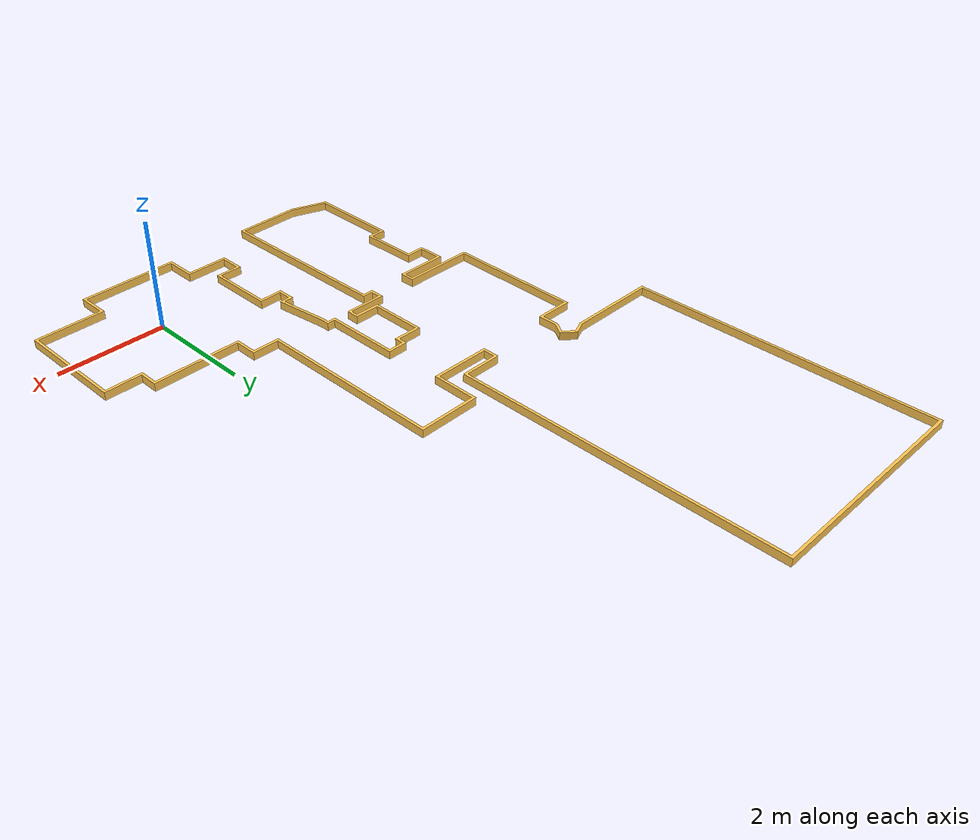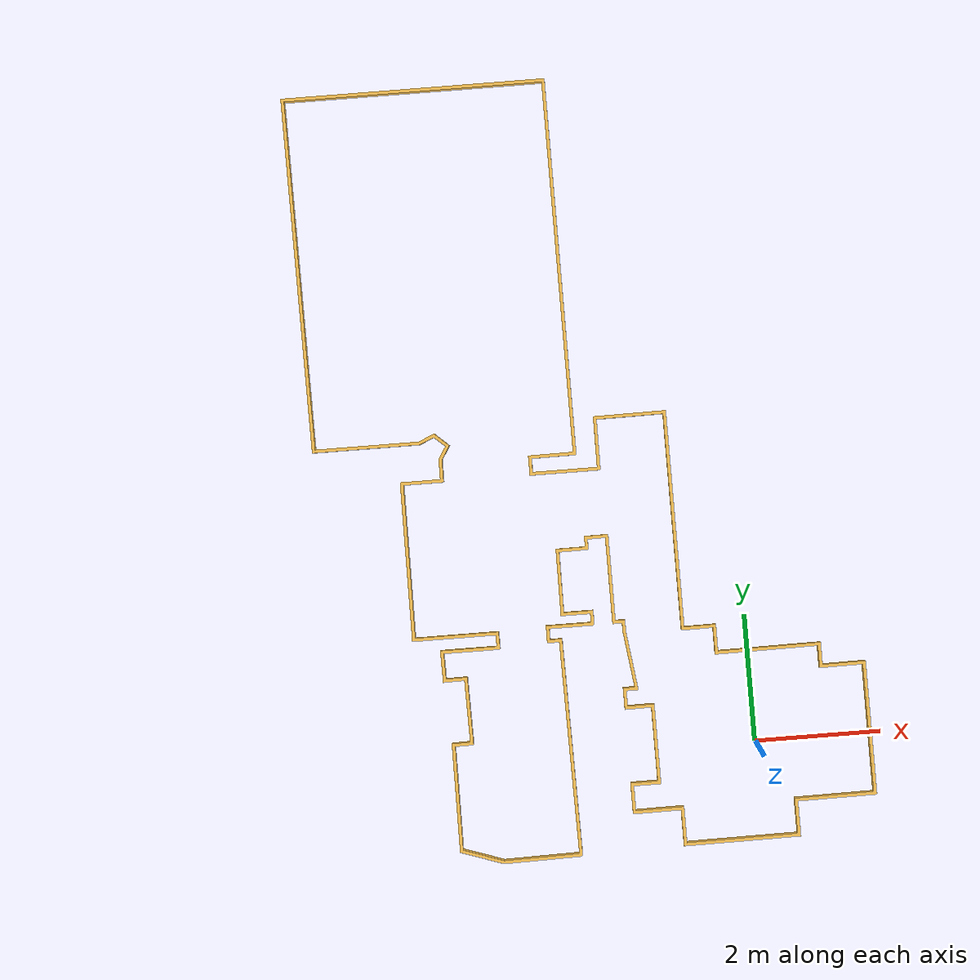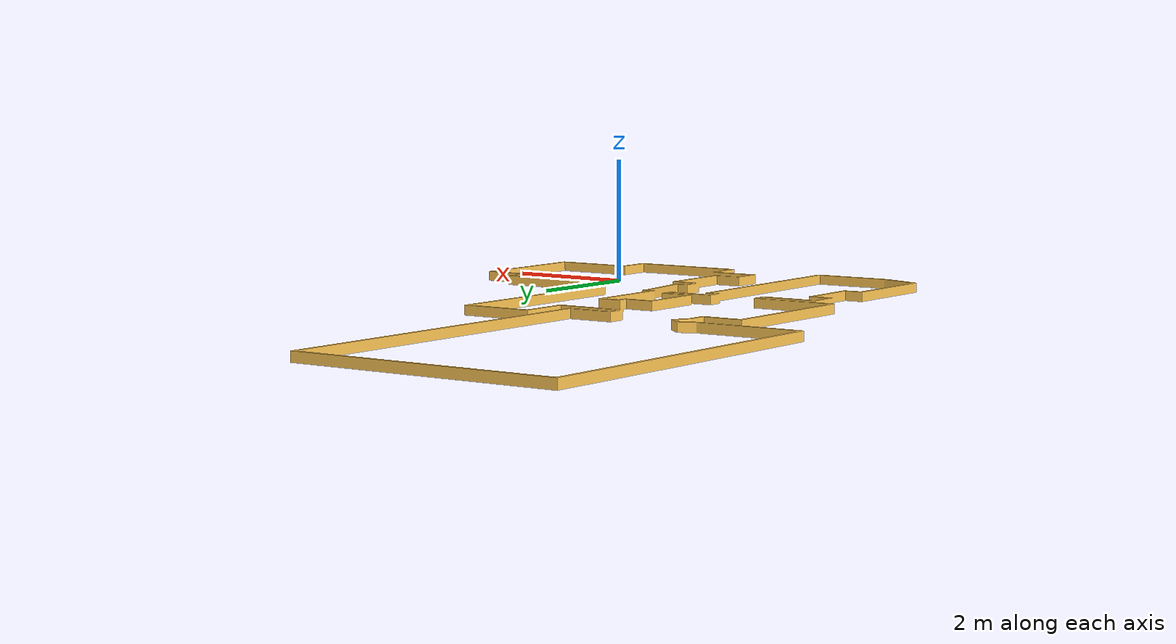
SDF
<?xml version="1.0" ?>
<sdf version="1.5">
  <model name="Home1">
    <link name="link">
      <collision name="collision">
        <geometry>
          <mesh>
            <scale>1 1 1</scale>
            <uri>model://Home1/meshes/Home1.dae</uri>
          </mesh>
        </geometry>
      </collision>
      <visual name="visual">
        <geometry>
          <mesh>
            <scale>1 1 1</scale>
            <uri>model://Home1/meshes/Home1.dae</uri>
          </mesh>
        </geometry>
      </visual>
    </link>
  </model>
</sdf>
